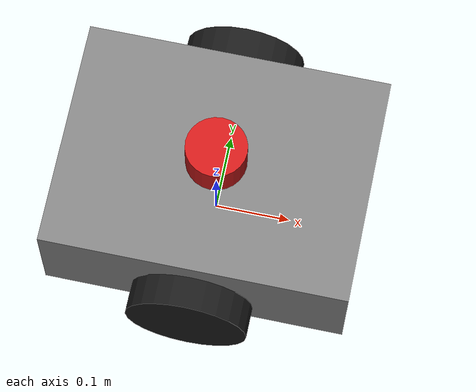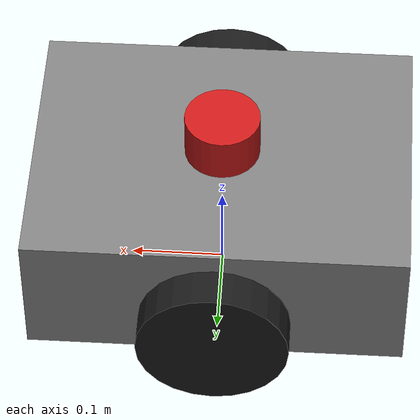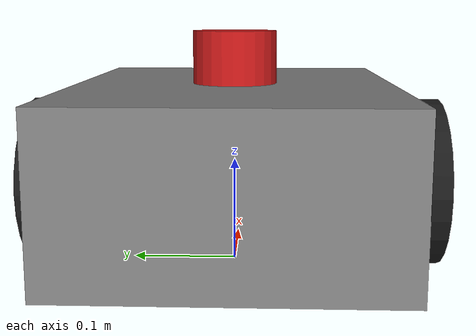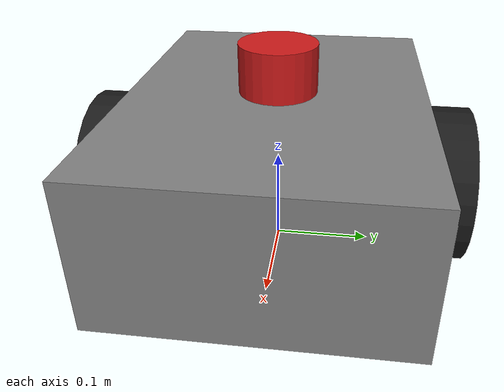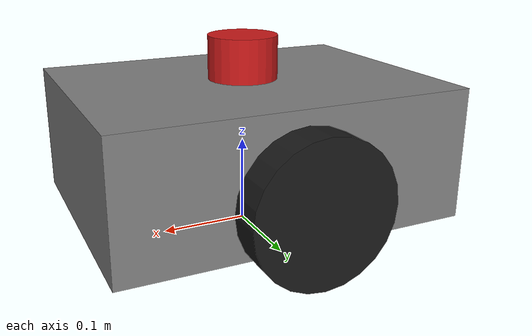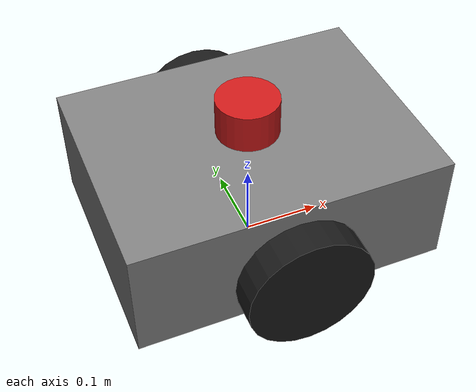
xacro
<?xml version="1.0"?>
<robot name="amr" xmlns:xacro="http://www.ros.org/wiki/xacro">

  <material name="grey"><color rgba="0.5 0.5 0.5 1"/></material>
  <material name="black"><color rgba="0.1 0.1 0.1 1"/></material>
  <material name="red"><color rgba="0.8 0.1 0.1 1"/></material>

  <link name="base_link"/>

  <link name="chassis">
    <visual>
      <geometry><box size="0.4 0.3 0.15"/></geometry>
      <material name="grey"/>
    </visual>
    <collision>
      <geometry><box size="0.4 0.3 0.15"/></geometry>
    </collision>
    <inertial>
      <mass value="5.0"/>
      <inertia ixx="0.05" ixy="0" ixz="0" iyy="0.08" iyz="0" izz="0.1"/>
    </inertial>
  </link>

  <joint name="base_to_chassis" type="fixed">
    <parent link="base_link"/>
    <child link="chassis"/>
    <origin xyz="0 0 0.1" rpy="0 0 0"/>
  </joint>

  <xacro:macro name="wheel" params="prefix y_offset">
    <link name="${prefix}_wheel">
      <visual>
        <geometry><cylinder radius="0.08" length="0.04"/></geometry>
        <material name="black"/>
        <origin rpy="1.5708 0 0"/>
      </visual>
      <collision>
        <geometry><cylinder radius="0.08" length="0.04"/></geometry>
        <origin rpy="1.5708 0 0"/>
      </collision>
      <inertial>
        <mass value="0.5"/>
        <inertia ixx="0.001" ixy="0" ixz="0" iyy="0.001" iyz="0" izz="0.001"/>
      </inertial>
    </link>
    <joint name="${prefix}_wheel_joint" type="continuous">
      <parent link="chassis"/>
      <child link="${prefix}_wheel"/>
      <origin xyz="0 ${y_offset} -0.02" rpy="0 0 0"/>
      <axis xyz="0 1 0"/>
    </joint>
  </xacro:macro>

  <xacro:wheel prefix="left" y_offset="0.175"/>
  <xacro:wheel prefix="right" y_offset="-0.175"/>

  <link name="caster_wheel">
    <visual>
      <geometry><sphere radius="0.04"/></geometry>
      <material name="black"/>
    </visual>
    <collision>
      <geometry><sphere radius="0.04"/></geometry>
    </collision>
    <inertial>
      <mass value="0.2"/>
      <inertia ixx="0.0001" ixy="0" ixz="0" iyy="0.0001" iyz="0" izz="0.0001"/>
    </inertial>
  </link>
  <joint name="caster_joint" type="fixed">
    <parent link="chassis"/>
    <child link="caster_wheel"/>
    <origin xyz="0.15 0 -0.06" rpy="0 0 0"/>
  </joint>

  <link name="lidar_link">
    <visual>
      <geometry><cylinder radius="0.04" length="0.05"/></geometry>
      <material name="red"/>
    </visual>
    <collision>
      <geometry><cylinder radius="0.04" length="0.05"/></geometry>
    </collision>
    <inertial>
      <mass value="0.1"/>
      <inertia ixx="0.0001" ixy="0" ixz="0" iyy="0.0001" iyz="0" izz="0.0001"/>
    </inertial>
  </link>
  <joint name="lidar_joint" type="fixed">
    <parent link="chassis"/>
    <child link="lidar_link"/>
    <origin xyz="0 0 0.1" rpy="0 0 0"/>
  </joint>
  <gazebo>
    <plugin filename="gz-sim-diff-drive-system" name="gz::sim::systems::DiffDrive">
      <left_joint>left_wheel_joint</left_joint>
      <right_joint>right_wheel_joint</right_joint>
      <wheel_separation>0.35</wheel_separation>
      <wheel_radius>0.08</wheel_radius>
      <odom_publish_frequency>30</odom_publish_frequency>
      <topic>cmd_vel</topic>
      <odom_topic>odom</odom_topic>
      <tf_topic>tf</tf_topic>
      <frame_id>odom</frame_id>
      <child_frame_id>base_link</child_frame_id>
    </plugin>
    <plugin filename="gz-sim-joint-state-publisher-system" name="gz::sim::systems::JointStatePublisher"/>
  </gazebo>

  <gazebo reference="lidar_link">
    <sensor name="lidar" type="gpu_lidar">
      <topic>scan</topic>
      <frame_id>lidar_link</frame_id>
      <update_rate>10</update_rate>
      <lidar>
        <scan>
          <horizontal>
            <samples>360</samples>
            <resolution>1</resolution>
            <min_angle>-3.14159</min_angle>
            <max_angle>3.14159</max_angle>
          </horizontal>
        </scan>
        <range>
          <min>0.1</min>
          <max>10.0</max>
          <resolution>0.01</resolution>
        </range>
      </lidar>
      <always_on>true</always_on>
      <visualize>true</visualize>
    </sensor>
  </gazebo>
</robot>
